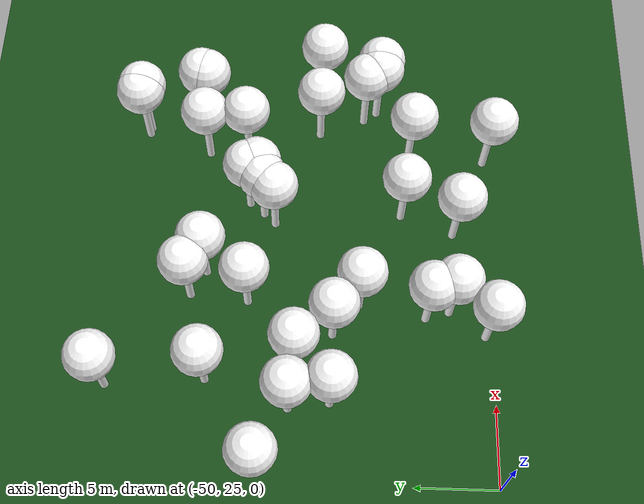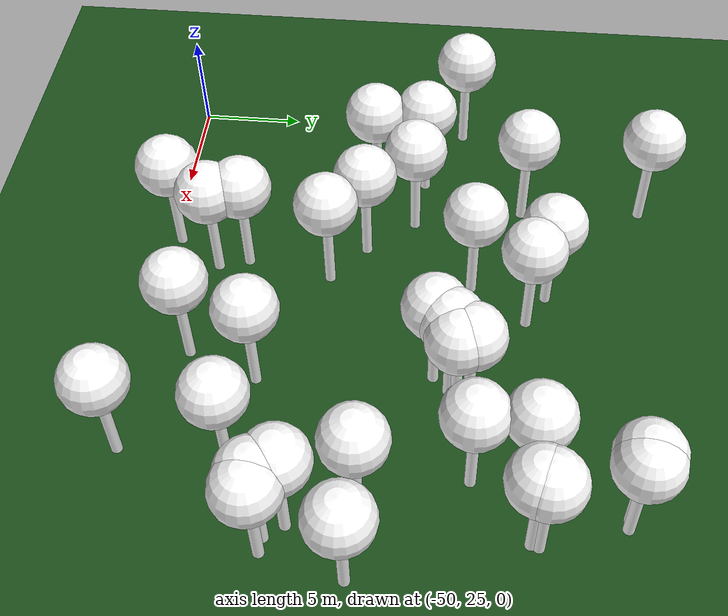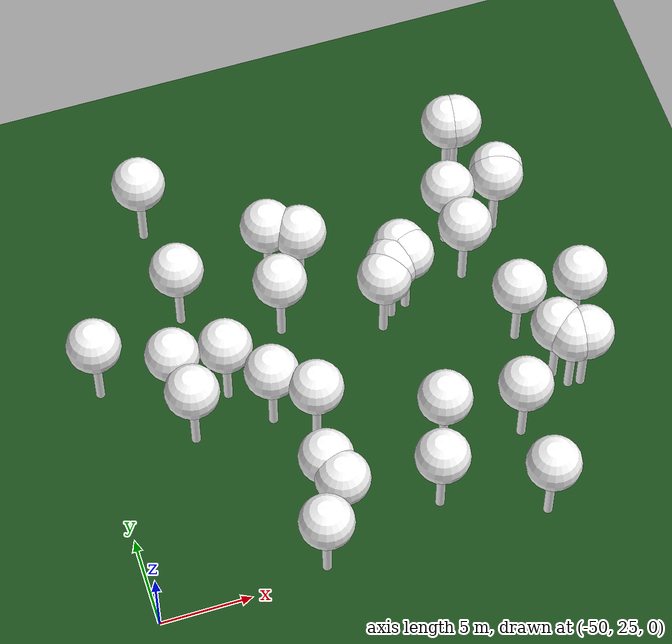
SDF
<sdf version="1.8">
 <world name="forest_world">
  <model name="tree_simple489">
   <static>1</static>
   <link name="link">
    <pose>0 0 0.1 0 -0 0</pose>
    <collision name="collision_trunk">
     <pose>0 0 2 0 -0 0</pose>
     <geometry><cylinder><radius>0.25</radius><length>4</length></cylinder></geometry>
    </collision>
    <collision name="collision_treetop">
     <pose>0 0 5.2 0 -0 0</pose>
     <geometry><sphere><radius>1.5</radius></sphere></geometry>
    </collision>
    <visual name="trunk">
     <pose>0 0 2 0 -0 0</pose>
     <geometry><cylinder><radius>0.25</radius><length>4</length></cylinder></geometry>
     <material>
      <ambient>0.5 0.5 0.5 1</ambient>
      <diffuse>1.0 1.0 1.0 1</diffuse>
      <specular>0.0 0.0 0.0 1</specular>
      <pbr>
       <metal>
        <albedo_map>../worlds/textures/tree_simple_trunk.jpg</albedo_map>
        <metalness>0.0</metalness>
        <roughness>0.8</roughness>
       </metal>
      </pbr>
     </material>
    </visual>
    <visual name="treetop">
     <pose>0 0 5.2 0 -0 0</pose>
     <geometry><sphere><radius>1.5</radius></sphere></geometry>
     <material>
      <ambient>0.5 0.5 0.5 1</ambient>
      <diffuse>1.0 1.0 1.0 1</diffuse>
      <specular>0.0 0.0 0.0 1</specular>
      <pbr>
       <metal>
        <albedo_map>../worlds/textures/tree_simple_treetop.jpg</albedo_map>
        <metalness>0.0</metalness>
        <roughness>0.9</roughness>
       </metal>
      </pbr>
     </material>
    </visual>
   </link>
   <pose>-32.6634579524 39.3278172931 0 0 -0 0</pose>
  </model>
  <model name="tree_simple482">
   <static>1</static>
   <link name="link">
    <pose>0 0 0.1 0 -0 0</pose>
    <collision name="collision_trunk">
     <pose>0 0 2 0 -0 0</pose>
     <geometry><cylinder><radius>0.25</radius><length>4</length></cylinder></geometry>
    </collision>
    <collision name="collision_treetop">
     <pose>0 0 5.2 0 -0 0</pose>
     <geometry><sphere><radius>1.5</radius></sphere></geometry>
    </collision>
    <visual name="trunk">
     <pose>0 0 2 0 -0 0</pose>
     <geometry><cylinder><radius>0.25</radius><length>4</length></cylinder></geometry>
     <material>
      <ambient>0.5 0.5 0.5 1</ambient>
      <diffuse>1.0 1.0 1.0 1</diffuse>
      <specular>0.0 0.0 0.0 1</specular>
      <pbr>
       <metal>
        <albedo_map>../worlds/textures/tree_simple_trunk.jpg</albedo_map>
        <metalness>0.0</metalness>
        <roughness>0.8</roughness>
       </metal>
      </pbr>
     </material>
    </visual>
    <visual name="treetop">
     <pose>0 0 5.2 0 -0 0</pose>
     <geometry><sphere><radius>1.5</radius></sphere></geometry>
     <material>
      <ambient>0.5 0.5 0.5 1</ambient>
      <diffuse>1.0 1.0 1.0 1</diffuse>
      <specular>0.0 0.0 0.0 1</specular>
      <pbr>
       <metal>
        <albedo_map>../worlds/textures/tree_simple_treetop.jpg</albedo_map>
        <metalness>0.0</metalness>
        <roughness>0.9</roughness>
       </metal>
      </pbr>
     </material>
    </visual>
   </link>
   <pose>-31.7137183406 39.6850484597 0 0 -0 0</pose>
  </model>
  <model name="tree_simple474">
   <static>1</static>
   <link name="link">
    <pose>0 0 0.1 0 -0 0</pose>
    <collision name="collision_trunk">
     <pose>0 0 2 0 -0 0</pose>
     <geometry><cylinder><radius>0.25</radius><length>4</length></cylinder></geometry>
    </collision>
    <collision name="collision_treetop">
     <pose>0 0 5.2 0 -0 0</pose>
     <geometry><sphere><radius>1.5</radius></sphere></geometry>
    </collision>
    <visual name="trunk">
     <pose>0 0 2 0 -0 0</pose>
     <geometry><cylinder><radius>0.25</radius><length>4</length></cylinder></geometry>
     <material>
      <ambient>0.5 0.5 0.5 1</ambient>
      <diffuse>1.0 1.0 1.0 1</diffuse>
      <specular>0.0 0.0 0.0 1</specular>
      <pbr>
       <metal>
        <albedo_map>../worlds/textures/tree_simple_trunk.jpg</albedo_map>
        <metalness>0.0</metalness>
        <roughness>0.8</roughness>
       </metal>
      </pbr>
     </material>
    </visual>
    <visual name="treetop">
     <pose>0 0 5.2 0 -0 0</pose>
     <geometry><sphere><radius>1.5</radius></sphere></geometry>
     <material>
      <ambient>0.5 0.5 0.5 1</ambient>
      <diffuse>1.0 1.0 1.0 1</diffuse>
      <specular>0.0 0.0 0.0 1</specular>
      <pbr>
       <metal>
        <albedo_map>../worlds/textures/tree_simple_treetop.jpg</albedo_map>
        <metalness>0.0</metalness>
        <roughness>0.9</roughness>
       </metal>
      </pbr>
     </material>
    </visual>
   </link>
   <pose>-45.5609359524 37.3889677829 0 0 -0 0</pose>
  </model>
  <model name="tree_simple462">
   <static>1</static>
   <link name="link">
    <pose>0 0 0.1 0 -0 0</pose>
    <collision name="collision_trunk">
     <pose>0 0 2 0 -0 0</pose>
     <geometry><cylinder><radius>0.25</radius><length>4</length></cylinder></geometry>
    </collision>
    <collision name="collision_treetop">
     <pose>0 0 5.2 0 -0 0</pose>
     <geometry><sphere><radius>1.5</radius></sphere></geometry>
    </collision>
    <visual name="trunk">
     <pose>0 0 2 0 -0 0</pose>
     <geometry><cylinder><radius>0.25</radius><length>4</length></cylinder></geometry>
     <material>
      <ambient>0.5 0.5 0.5 1</ambient>
      <diffuse>1.0 1.0 1.0 1</diffuse>
      <specular>0.0 0.0 0.0 1</specular>
      <pbr>
       <metal>
        <albedo_map>../worlds/textures/tree_simple_trunk.jpg</albedo_map>
        <metalness>0.0</metalness>
        <roughness>0.8</roughness>
       </metal>
      </pbr>
     </material>
    </visual>
    <visual name="treetop">
     <pose>0 0 5.2 0 -0 0</pose>
     <geometry><sphere><radius>1.5</radius></sphere></geometry>
     <material>
      <ambient>0.5 0.5 0.5 1</ambient>
      <diffuse>1.0 1.0 1.0 1</diffuse>
      <specular>0.0 0.0 0.0 1</specular>
      <pbr>
       <metal>
        <albedo_map>../worlds/textures/tree_simple_treetop.jpg</albedo_map>
        <metalness>0.0</metalness>
        <roughness>0.9</roughness>
       </metal>
      </pbr>
     </material>
    </visual>
   </link>
   <pose>-33.3479265171 38.6010387018 0 0 -0 0</pose>
  </model>
  <model name="tree_simple441">
   <static>1</static>
   <link name="link">
    <pose>0 0 0.1 0 -0 0</pose>
    <collision name="collision_trunk">
     <pose>0 0 2 0 -0 0</pose>
     <geometry><cylinder><radius>0.25</radius><length>4</length></cylinder></geometry>
    </collision>
    <collision name="collision_treetop">
     <pose>0 0 5.2 0 -0 0</pose>
     <geometry><sphere><radius>1.5</radius></sphere></geometry>
    </collision>
    <visual name="trunk">
     <pose>0 0 2 0 -0 0</pose>
     <geometry><cylinder><radius>0.25</radius><length>4</length></cylinder></geometry>
     <material>
      <ambient>0.5 0.5 0.5 1</ambient>
      <diffuse>1.0 1.0 1.0 1</diffuse>
      <specular>0.0 0.0 0.0 1</specular>
      <pbr>
       <metal>
        <albedo_map>../worlds/textures/tree_simple_trunk.jpg</albedo_map>
        <metalness>0.0</metalness>
        <roughness>0.8</roughness>
       </metal>
      </pbr>
     </material>
    </visual>
    <visual name="treetop">
     <pose>0 0 5.2 0 -0 0</pose>
     <geometry><sphere><radius>1.5</radius></sphere></geometry>
     <material>
      <ambient>0.5 0.5 0.5 1</ambient>
      <diffuse>1.0 1.0 1.0 1</diffuse>
      <specular>0.0 0.0 0.0 1</specular>
      <pbr>
       <metal>
        <albedo_map>../worlds/textures/tree_simple_treetop.jpg</albedo_map>
        <metalness>0.0</metalness>
        <roughness>0.9</roughness>
       </metal>
      </pbr>
     </material>
    </visual>
   </link>
   <pose>-25.4258718868 33.0017159702 0 0 -0 0</pose>
  </model>
  <model name="tree_simple410">
   <static>1</static>
   <link name="link">
    <pose>0 0 0.1 0 -0 0</pose>
    <collision name="collision_trunk">
     <pose>0 0 2 0 -0 0</pose>
     <geometry><cylinder><radius>0.25</radius><length>4</length></cylinder></geometry>
    </collision>
    <collision name="collision_treetop">
     <pose>0 0 5.2 0 -0 0</pose>
     <geometry><sphere><radius>1.5</radius></sphere></geometry>
    </collision>
    <visual name="trunk">
     <pose>0 0 2 0 -0 0</pose>
     <geometry><cylinder><radius>0.25</radius><length>4</length></cylinder></geometry>
     <material>
      <ambient>0.5 0.5 0.5 1</ambient>
      <diffuse>1.0 1.0 1.0 1</diffuse>
      <specular>0.0 0.0 0.0 1</specular>
      <pbr>
       <metal>
        <albedo_map>../worlds/textures/tree_simple_trunk.jpg</albedo_map>
        <metalness>0.0</metalness>
        <roughness>0.8</roughness>
       </metal>
      </pbr>
     </material>
    </visual>
    <visual name="treetop">
     <pose>0 0 5.2 0 -0 0</pose>
     <geometry><sphere><radius>1.5</radius></sphere></geometry>
     <material>
      <ambient>0.5 0.5 0.5 1</ambient>
      <diffuse>1.0 1.0 1.0 1</diffuse>
      <specular>0.0 0.0 0.0 1</specular>
      <pbr>
       <metal>
        <albedo_map>../worlds/textures/tree_simple_treetop.jpg</albedo_map>
        <metalness>0.0</metalness>
        <roughness>0.9</roughness>
       </metal>
      </pbr>
     </material>
    </visual>
   </link>
   <pose>-31.9347087499 40.2537422087 0 0 -0 0</pose>
  </model>
  <model name="tree_simple409">
   <static>1</static>
   <link name="link">
    <pose>0 0 0.1 0 -0 0</pose>
    <collision name="collision_trunk">
     <pose>0 0 2 0 -0 0</pose>
     <geometry><cylinder><radius>0.25</radius><length>4</length></cylinder></geometry>
    </collision>
    <collision name="collision_treetop">
     <pose>0 0 5.2 0 -0 0</pose>
     <geometry><sphere><radius>1.5</radius></sphere></geometry>
    </collision>
    <visual name="trunk">
     <pose>0 0 2 0 -0 0</pose>
     <geometry><cylinder><radius>0.25</radius><length>4</length></cylinder></geometry>
     <material>
      <ambient>0.5 0.5 0.5 1</ambient>
      <diffuse>1.0 1.0 1.0 1</diffuse>
      <specular>0.0 0.0 0.0 1</specular>
      <pbr>
       <metal>
        <albedo_map>../worlds/textures/tree_simple_trunk.jpg</albedo_map>
        <metalness>0.0</metalness>
        <roughness>0.8</roughness>
       </metal>
      </pbr>
     </material>
    </visual>
    <visual name="treetop">
     <pose>0 0 5.2 0 -0 0</pose>
     <geometry><sphere><radius>1.5</radius></sphere></geometry>
     <material>
      <ambient>0.5 0.5 0.5 1</ambient>
      <diffuse>1.0 1.0 1.0 1</diffuse>
      <specular>0.0 0.0 0.0 1</specular>
      <pbr>
       <metal>
        <albedo_map>../worlds/textures/tree_simple_treetop.jpg</albedo_map>
        <metalness>0.0</metalness>
        <roughness>0.9</roughness>
       </metal>
      </pbr>
     </material>
    </visual>
   </link>
   <pose>-23.2045481925 35.7189479207 0 0 -0 0</pose>
  </model>
  <model name="tree_simple358">
   <static>1</static>
   <link name="link">
    <pose>0 0 0.1 0 -0 0</pose>
    <collision name="collision_trunk">
     <pose>0 0 2 0 -0 0</pose>
     <geometry><cylinder><radius>0.25</radius><length>4</length></cylinder></geometry>
    </collision>
    <collision name="collision_treetop">
     <pose>0 0 5.2 0 -0 0</pose>
     <geometry><sphere><radius>1.5</radius></sphere></geometry>
    </collision>
    <visual name="trunk">
     <pose>0 0 2 0 -0 0</pose>
     <geometry><cylinder><radius>0.25</radius><length>4</length></cylinder></geometry>
     <material>
      <ambient>0.5 0.5 0.5 1</ambient>
      <diffuse>1.0 1.0 1.0 1</diffuse>
      <specular>0.0 0.0 0.0 1</specular>
      <pbr>
       <metal>
        <albedo_map>../worlds/textures/tree_simple_trunk.jpg</albedo_map>
        <metalness>0.0</metalness>
        <roughness>0.8</roughness>
       </metal>
      </pbr>
     </material>
    </visual>
    <visual name="treetop">
     <pose>0 0 5.2 0 -0 0</pose>
     <geometry><sphere><radius>1.5</radius></sphere></geometry>
     <material>
      <ambient>0.5 0.5 0.5 1</ambient>
      <diffuse>1.0 1.0 1.0 1</diffuse>
      <specular>0.0 0.0 0.0 1</specular>
      <pbr>
       <metal>
        <albedo_map>../worlds/textures/tree_simple_treetop.jpg</albedo_map>
        <metalness>0.0</metalness>
        <roughness>0.9</roughness>
       </metal>
      </pbr>
     </material>
    </visual>
   </link>
   <pose>-28.1059387966 40.529489556 0 0 -0 0</pose>
  </model>
  <model name="tree_simple351">
   <static>1</static>
   <link name="link">
    <pose>0 0 0.1 0 -0 0</pose>
    <collision name="collision_trunk">
     <pose>0 0 2 0 -0 0</pose>
     <geometry><cylinder><radius>0.25</radius><length>4</length></cylinder></geometry>
    </collision>
    <collision name="collision_treetop">
     <pose>0 0 5.2 0 -0 0</pose>
     <geometry><sphere><radius>1.5</radius></sphere></geometry>
    </collision>
    <visual name="trunk">
     <pose>0 0 2 0 -0 0</pose>
     <geometry><cylinder><radius>0.25</radius><length>4</length></cylinder></geometry>
     <material>
      <ambient>0.5 0.5 0.5 1</ambient>
      <diffuse>1.0 1.0 1.0 1</diffuse>
      <specular>0.0 0.0 0.0 1</specular>
      <pbr>
       <metal>
        <albedo_map>../worlds/textures/tree_simple_trunk.jpg</albedo_map>
        <metalness>0.0</metalness>
        <roughness>0.8</roughness>
       </metal>
      </pbr>
     </material>
    </visual>
    <visual name="treetop">
     <pose>0 0 5.2 0 -0 0</pose>
     <geometry><sphere><radius>1.5</radius></sphere></geometry>
     <material>
      <ambient>0.5 0.5 0.5 1</ambient>
      <diffuse>1.0 1.0 1.0 1</diffuse>
      <specular>0.0 0.0 0.0 1</specular>
      <pbr>
       <metal>
        <albedo_map>../worlds/textures/tree_simple_treetop.jpg</albedo_map>
        <metalness>0.0</metalness>
        <roughness>0.9</roughness>
       </metal>
      </pbr>
     </material>
    </visual>
   </link>
   <pose>-28.4628783032 25.1782097003 0 0 -0 0</pose>
  </model>
  <model name="tree_simple336">
   <static>1</static>
   <link name="link">
    <pose>0 0 0.1 0 -0 0</pose>
    <collision name="collision_trunk">
     <pose>0 0 2 0 -0 0</pose>
     <geometry><cylinder><radius>0.25</radius><length>4</length></cylinder></geometry>
    </collision>
    <collision name="collision_treetop">
     <pose>0 0 5.2 0 -0 0</pose>
     <geometry><sphere><radius>1.5</radius></sphere></geometry>
    </collision>
    <visual name="trunk">
     <pose>0 0 2 0 -0 0</pose>
     <geometry><cylinder><radius>0.25</radius><length>4</length></cylinder></geometry>
     <material>
      <ambient>0.5 0.5 0.5 1</ambient>
      <diffuse>1.0 1.0 1.0 1</diffuse>
      <specular>0.0 0.0 0.0 1</specular>
      <pbr>
       <metal>
        <albedo_map>../worlds/textures/tree_simple_trunk.jpg</albedo_map>
        <metalness>0.0</metalness>
        <roughness>0.8</roughness>
       </metal>
      </pbr>
     </material>
    </visual>
    <visual name="treetop">
     <pose>0 0 5.2 0 -0 0</pose>
     <geometry><sphere><radius>1.5</radius></sphere></geometry>
     <material>
      <ambient>0.5 0.5 0.5 1</ambient>
      <diffuse>1.0 1.0 1.0 1</diffuse>
      <specular>0.0 0.0 0.0 1</specular>
      <pbr>
       <metal>
        <albedo_map>../worlds/textures/tree_simple_treetop.jpg</albedo_map>
        <metalness>0.0</metalness>
        <roughness>0.9</roughness>
       </metal>
      </pbr>
     </material>
    </visual>
   </link>
   <pose>-43.9020074738 42.4187815875 0 0 -0 0</pose>
  </model>
  <model name="tree_simple331">
   <static>1</static>
   <link name="link">
    <pose>0 0 0.1 0 -0 0</pose>
    <collision name="collision_trunk">
     <pose>0 0 2 0 -0 0</pose>
     <geometry><cylinder><radius>0.25</radius><length>4</length></cylinder></geometry>
    </collision>
    <collision name="collision_treetop">
     <pose>0 0 5.2 0 -0 0</pose>
     <geometry><sphere><radius>1.5</radius></sphere></geometry>
    </collision>
    <visual name="trunk">
     <pose>0 0 2 0 -0 0</pose>
     <geometry><cylinder><radius>0.25</radius><length>4</length></cylinder></geometry>
     <material>
      <ambient>0.5 0.5 0.5 1</ambient>
      <diffuse>1.0 1.0 1.0 1</diffuse>
      <specular>0.0 0.0 0.0 1</specular>
      <pbr>
       <metal>
        <albedo_map>../worlds/textures/tree_simple_trunk.jpg</albedo_map>
        <metalness>0.0</metalness>
        <roughness>0.8</roughness>
       </metal>
      </pbr>
     </material>
    </visual>
    <visual name="treetop">
     <pose>0 0 5.2 0 -0 0</pose>
     <geometry><sphere><radius>1.5</radius></sphere></geometry>
     <material>
      <ambient>0.5 0.5 0.5 1</ambient>
      <diffuse>1.0 1.0 1.0 1</diffuse>
      <specular>0.0 0.0 0.0 1</specular>
      <pbr>
       <metal>
        <albedo_map>../worlds/textures/tree_simple_treetop.jpg</albedo_map>
        <metalness>0.0</metalness>
        <roughness>0.9</roughness>
       </metal>
      </pbr>
     </material>
    </visual>
   </link>
   <pose>-40.8341940448 34.8238319948 0 0 -0 0</pose>
  </model>
  <model name="tree_simple319">
   <static>1</static>
   <link name="link">
    <pose>0 0 0.1 0 -0 0</pose>
    <collision name="collision_trunk">
     <pose>0 0 2 0 -0 0</pose>
     <geometry><cylinder><radius>0.25</radius><length>4</length></cylinder></geometry>
    </collision>
    <collision name="collision_treetop">
     <pose>0 0 5.2 0 -0 0</pose>
     <geometry><sphere><radius>1.5</radius></sphere></geometry>
    </collision>
    <visual name="trunk">
     <pose>0 0 2 0 -0 0</pose>
     <geometry><cylinder><radius>0.25</radius><length>4</length></cylinder></geometry>
     <material>
      <ambient>0.5 0.5 0.5 1</ambient>
      <diffuse>1.0 1.0 1.0 1</diffuse>
      <specular>0.0 0.0 0.0 1</specular>
      <pbr>
       <metal>
        <albedo_map>../worlds/textures/tree_simple_trunk.jpg</albedo_map>
        <metalness>0.0</metalness>
        <roughness>0.8</roughness>
       </metal>
      </pbr>
     </material>
    </visual>
    <visual name="treetop">
     <pose>0 0 5.2 0 -0 0</pose>
     <geometry><sphere><radius>1.5</radius></sphere></geometry>
     <material>
      <ambient>0.5 0.5 0.5 1</ambient>
      <diffuse>1.0 1.0 1.0 1</diffuse>
      <specular>0.0 0.0 0.0 1</specular>
      <pbr>
       <metal>
        <albedo_map>../worlds/textures/tree_simple_treetop.jpg</albedo_map>
        <metalness>0.0</metalness>
        <roughness>0.9</roughness>
       </metal>
      </pbr>
     </material>
    </visual>
   </link>
   <pose>-33.8227496689 27.309967617 0 0 -0 0</pose>
  </model>
  <model name="tree_simple311">
   <static>1</static>
   <link name="link">
    <pose>0 0 0.1 0 -0 0</pose>
    <collision name="collision_trunk">
     <pose>0 0 2 0 -0 0</pose>
     <geometry><cylinder><radius>0.25</radius><length>4</length></cylinder></geometry>
    </collision>
    <collision name="collision_treetop">
     <pose>0 0 5.2 0 -0 0</pose>
     <geometry><sphere><radius>1.5</radius></sphere></geometry>
    </collision>
    <visual name="trunk">
     <pose>0 0 2 0 -0 0</pose>
     <geometry><cylinder><radius>0.25</radius><length>4</length></cylinder></geometry>
     <material>
      <ambient>0.5 0.5 0.5 1</ambient>
      <diffuse>1.0 1.0 1.0 1</diffuse>
      <specular>0.0 0.0 0.0 1</specular>
      <pbr>
       <metal>
        <albedo_map>../worlds/textures/tree_simple_trunk.jpg</albedo_map>
        <metalness>0.0</metalness>
        <roughness>0.8</roughness>
       </metal>
      </pbr>
     </material>
    </visual>
    <visual name="treetop">
     <pose>0 0 5.2 0 -0 0</pose>
     <geometry><sphere><radius>1.5</radius></sphere></geometry>
     <material>
      <ambient>0.5 0.5 0.5 1</ambient>
      <diffuse>1.0 1.0 1.0 1</diffuse>
      <specular>0.0 0.0 0.0 1</specular>
      <pbr>
       <metal>
        <albedo_map>../worlds/textures/tree_simple_treetop.jpg</albedo_map>
        <metalness>0.0</metalness>
        <roughness>0.9</roughness>
       </metal>
      </pbr>
     </material>
    </visual>
   </link>
   <pose>-49.3857645653 39.1709388153 0 0 -0 0</pose>
  </model>
  <model name="tree_simple310">
   <static>1</static>
   <link name="link">
    <pose>0 0 0.1 0 -0 0</pose>
    <collision name="collision_trunk">
     <pose>0 0 2 0 -0 0</pose>
     <geometry><cylinder><radius>0.25</radius><length>4</length></cylinder></geometry>
    </collision>
    <collision name="collision_treetop">
     <pose>0 0 5.2 0 -0 0</pose>
     <geometry><sphere><radius>1.5</radius></sphere></geometry>
    </collision>
    <visual name="trunk">
     <pose>0 0 2 0 -0 0</pose>
     <geometry><cylinder><radius>0.25</radius><length>4</length></cylinder></geometry>
     <material>
      <ambient>0.5 0.5 0.5 1</ambient>
      <diffuse>1.0 1.0 1.0 1</diffuse>
      <specular>0.0 0.0 0.0 1</specular>
      <pbr>
       <metal>
        <albedo_map>../worlds/textures/tree_simple_trunk.jpg</albedo_map>
        <metalness>0.0</metalness>
        <roughness>0.8</roughness>
       </metal>
      </pbr>
     </material>
    </visual>
    <visual name="treetop">
     <pose>0 0 5.2 0 -0 0</pose>
     <geometry><sphere><radius>1.5</radius></sphere></geometry>
     <material>
      <ambient>0.5 0.5 0.5 1</ambient>
      <diffuse>1.0 1.0 1.0 1</diffuse>
      <specular>0.0 0.0 0.0 1</specular>
      <pbr>
       <metal>
        <albedo_map>../worlds/textures/tree_simple_treetop.jpg</albedo_map>
        <metalness>0.0</metalness>
        <roughness>0.9</roughness>
       </metal>
      </pbr>
     </material>
    </visual>
   </link>
   <pose>-24.1249967054 32.1060106323 0 0 -0 0</pose>
  </model>
  <model name="tree_simple307">
   <static>1</static>
   <link name="link">
    <pose>0 0 0.1 0 -0 0</pose>
    <collision name="collision_trunk">
     <pose>0 0 2 0 -0 0</pose>
     <geometry><cylinder><radius>0.25</radius><length>4</length></cylinder></geometry>
    </collision>
    <collision name="collision_treetop">
     <pose>0 0 5.2 0 -0 0</pose>
     <geometry><sphere><radius>1.5</radius></sphere></geometry>
    </collision>
    <visual name="trunk">
     <pose>0 0 2 0 -0 0</pose>
     <geometry><cylinder><radius>0.25</radius><length>4</length></cylinder></geometry>
     <material>
      <ambient>0.5 0.5 0.5 1</ambient>
      <diffuse>1.0 1.0 1.0 1</diffuse>
      <specular>0.0 0.0 0.0 1</specular>
      <pbr>
       <metal>
        <albedo_map>../worlds/textures/tree_simple_trunk.jpg</albedo_map>
        <metalness>0.0</metalness>
        <roughness>0.8</roughness>
       </metal>
      </pbr>
     </material>
    </visual>
    <visual name="treetop">
     <pose>0 0 5.2 0 -0 0</pose>
     <geometry><sphere><radius>1.5</radius></sphere></geometry>
     <material>
      <ambient>0.5 0.5 0.5 1</ambient>
      <diffuse>1.0 1.0 1.0 1</diffuse>
      <specular>0.0 0.0 0.0 1</specular>
      <pbr>
       <metal>
        <albedo_map>../worlds/textures/tree_simple_treetop.jpg</albedo_map>
        <metalness>0.0</metalness>
        <roughness>0.9</roughness>
       </metal>
      </pbr>
     </material>
    </visual>
   </link>
   <pose>-25.3992623196 43.1282745175 0 0 -0 0</pose>
  </model>
  <model name="tree_simple291">
   <static>1</static>
   <link name="link">
    <pose>0 0 0.1 0 -0 0</pose>
    <collision name="collision_trunk">
     <pose>0 0 2 0 -0 0</pose>
     <geometry><cylinder><radius>0.25</radius><length>4</length></cylinder></geometry>
    </collision>
    <collision name="collision_treetop">
     <pose>0 0 5.2 0 -0 0</pose>
     <geometry><sphere><radius>1.5</radius></sphere></geometry>
    </collision>
    <visual name="trunk">
     <pose>0 0 2 0 -0 0</pose>
     <geometry><cylinder><radius>0.25</radius><length>4</length></cylinder></geometry>
     <material>
      <ambient>0.5 0.5 0.5 1</ambient>
      <diffuse>1.0 1.0 1.0 1</diffuse>
      <specular>0.0 0.0 0.0 1</specular>
      <pbr>
       <metal>
        <albedo_map>../worlds/textures/tree_simple_trunk.jpg</albedo_map>
        <metalness>0.0</metalness>
        <roughness>0.8</roughness>
       </metal>
      </pbr>
     </material>
    </visual>
    <visual name="treetop">
     <pose>0 0 5.2 0 -0 0</pose>
     <geometry><sphere><radius>1.5</radius></sphere></geometry>
     <material>
      <ambient>0.5 0.5 0.5 1</ambient>
      <diffuse>1.0 1.0 1.0 1</diffuse>
      <specular>0.0 0.0 0.0 1</specular>
      <pbr>
       <metal>
        <albedo_map>../worlds/textures/tree_simple_treetop.jpg</albedo_map>
        <metalness>0.0</metalness>
        <roughness>0.9</roughness>
       </metal>
      </pbr>
     </material>
    </visual>
   </link>
   <pose>-38.780558868 40.0860126223 0 0 -0 0</pose>
  </model>
  <model name="tree_simple264">
   <static>1</static>
   <link name="link">
    <pose>0 0 0.1 0 -0 0</pose>
    <collision name="collision_trunk">
     <pose>0 0 2 0 -0 0</pose>
     <geometry><cylinder><radius>0.25</radius><length>4</length></cylinder></geometry>
    </collision>
    <collision name="collision_treetop">
     <pose>0 0 5.2 0 -0 0</pose>
     <geometry><sphere><radius>1.5</radius></sphere></geometry>
    </collision>
    <visual name="trunk">
     <pose>0 0 2 0 -0 0</pose>
     <geometry><cylinder><radius>0.25</radius><length>4</length></cylinder></geometry>
     <material>
      <ambient>0.5 0.5 0.5 1</ambient>
      <diffuse>1.0 1.0 1.0 1</diffuse>
      <specular>0.0 0.0 0.0 1</specular>
      <pbr>
       <metal>
        <albedo_map>../worlds/textures/tree_simple_trunk.jpg</albedo_map>
        <metalness>0.0</metalness>
        <roughness>0.8</roughness>
       </metal>
      </pbr>
     </material>
    </visual>
    <visual name="treetop">
     <pose>0 0 5.2 0 -0 0</pose>
     <geometry><sphere><radius>1.5</radius></sphere></geometry>
     <material>
      <ambient>0.5 0.5 0.5 1</ambient>
      <diffuse>1.0 1.0 1.0 1</diffuse>
      <specular>0.0 0.0 0.0 1</specular>
      <pbr>
       <metal>
        <albedo_map>../worlds/textures/tree_simple_treetop.jpg</albedo_map>
        <metalness>0.0</metalness>
        <roughness>0.9</roughness>
       </metal>
      </pbr>
     </material>
    </visual>
   </link>
   <pose>-26.5960769864 35.8751081016 0 0 -0 0</pose>
  </model>
  <model name="tree_simple256">
   <static>1</static>
   <link name="link">
    <pose>0 0 0.1 0 -0 0</pose>
    <collision name="collision_trunk">
     <pose>0 0 2 0 -0 0</pose>
     <geometry><cylinder><radius>0.25</radius><length>4</length></cylinder></geometry>
    </collision>
    <collision name="collision_treetop">
     <pose>0 0 5.2 0 -0 0</pose>
     <geometry><sphere><radius>1.5</radius></sphere></geometry>
    </collision>
    <visual name="trunk">
     <pose>0 0 2 0 -0 0</pose>
     <geometry><cylinder><radius>0.25</radius><length>4</length></cylinder></geometry>
     <material>
      <ambient>0.5 0.5 0.5 1</ambient>
      <diffuse>1.0 1.0 1.0 1</diffuse>
      <specular>0.0 0.0 0.0 1</specular>
      <pbr>
       <metal>
        <albedo_map>../worlds/textures/tree_simple_trunk.jpg</albedo_map>
        <metalness>0.0</metalness>
        <roughness>0.8</roughness>
       </metal>
      </pbr>
     </material>
    </visual>
    <visual name="treetop">
     <pose>0 0 5.2 0 -0 0</pose>
     <geometry><sphere><radius>1.5</radius></sphere></geometry>
     <material>
      <ambient>0.5 0.5 0.5 1</ambient>
      <diffuse>1.0 1.0 1.0 1</diffuse>
      <specular>0.0 0.0 0.0 1</specular>
      <pbr>
       <metal>
        <albedo_map>../worlds/textures/tree_simple_treetop.jpg</albedo_map>
        <metalness>0.0</metalness>
        <roughness>0.9</roughness>
       </metal>
      </pbr>
     </material>
    </visual>
   </link>
   <pose>-38.4325558623 43.6568851864 0 0 -0 0</pose>
  </model>
  <model name="tree_simple247">
   <static>1</static>
   <link name="link">
    <pose>0 0 0.1 0 -0 0</pose>
    <collision name="collision_trunk">
     <pose>0 0 2 0 -0 0</pose>
     <geometry><cylinder><radius>0.25</radius><length>4</length></cylinder></geometry>
    </collision>
    <collision name="collision_treetop">
     <pose>0 0 5.2 0 -0 0</pose>
     <geometry><sphere><radius>1.5</radius></sphere></geometry>
    </collision>
    <visual name="trunk">
     <pose>0 0 2 0 -0 0</pose>
     <geometry><cylinder><radius>0.25</radius><length>4</length></cylinder></geometry>
     <material>
      <ambient>0.5 0.5 0.5 1</ambient>
      <diffuse>1.0 1.0 1.0 1</diffuse>
      <specular>0.0 0.0 0.0 1</specular>
      <pbr>
       <metal>
        <albedo_map>../worlds/textures/tree_simple_trunk.jpg</albedo_map>
        <metalness>0.0</metalness>
        <roughness>0.8</roughness>
       </metal>
      </pbr>
     </material>
    </visual>
    <visual name="treetop">
     <pose>0 0 5.2 0 -0 0</pose>
     <geometry><sphere><radius>1.5</radius></sphere></geometry>
     <material>
      <ambient>0.5 0.5 0.5 1</ambient>
      <diffuse>1.0 1.0 1.0 1</diffuse>
      <specular>0.0 0.0 0.0 1</specular>
      <pbr>
       <metal>
        <albedo_map>../worlds/textures/tree_simple_treetop.jpg</albedo_map>
        <metalness>0.0</metalness>
        <roughness>0.9</roughness>
       </metal>
      </pbr>
     </material>
    </visual>
   </link>
   <pose>-44.3832388131 48.3955182604 0 0 -0 0</pose>
  </model>
  <model name="tree_simple236">
   <static>1</static>
   <link name="link">
    <pose>0 0 0.1 0 -0 0</pose>
    <collision name="collision_trunk">
     <pose>0 0 2 0 -0 0</pose>
     <geometry><cylinder><radius>0.25</radius><length>4</length></cylinder></geometry>
    </collision>
    <collision name="collision_treetop">
     <pose>0 0 5.2 0 -0 0</pose>
     <geometry><sphere><radius>1.5</radius></sphere></geometry>
    </collision>
    <visual name="trunk">
     <pose>0 0 2 0 -0 0</pose>
     <geometry><cylinder><radius>0.25</radius><length>4</length></cylinder></geometry>
     <material>
      <ambient>0.5 0.5 0.5 1</ambient>
      <diffuse>1.0 1.0 1.0 1</diffuse>
      <specular>0.0 0.0 0.0 1</specular>
      <pbr>
       <metal>
        <albedo_map>../worlds/textures/tree_simple_trunk.jpg</albedo_map>
        <metalness>0.0</metalness>
        <roughness>0.8</roughness>
       </metal>
      </pbr>
     </material>
    </visual>
    <visual name="treetop">
     <pose>0 0 5.2 0 -0 0</pose>
     <geometry><sphere><radius>1.5</radius></sphere></geometry>
     <material>
      <ambient>0.5 0.5 0.5 1</ambient>
      <diffuse>1.0 1.0 1.0 1</diffuse>
      <specular>0.0 0.0 0.0 1</specular>
      <pbr>
       <metal>
        <albedo_map>../worlds/textures/tree_simple_treetop.jpg</albedo_map>
        <metalness>0.0</metalness>
        <roughness>0.9</roughness>
       </metal>
      </pbr>
     </material>
    </visual>
   </link>
   <pose>-28.2556560036 43.088579588 0 0 -0 0</pose>
  </model>
  <model name="tree_simple224">
   <static>1</static>
   <link name="link">
    <pose>0 0 0.1 0 -0 0</pose>
    <collision name="collision_trunk">
     <pose>0 0 2 0 -0 0</pose>
     <geometry><cylinder><radius>0.25</radius><length>4</length></cylinder></geometry>
    </collision>
    <collision name="collision_treetop">
     <pose>0 0 5.2 0 -0 0</pose>
     <geometry><sphere><radius>1.5</radius></sphere></geometry>
    </collision>
    <visual name="trunk">
     <pose>0 0 2 0 -0 0</pose>
     <geometry><cylinder><radius>0.25</radius><length>4</length></cylinder></geometry>
     <material>
      <ambient>0.5 0.5 0.5 1</ambient>
      <diffuse>1.0 1.0 1.0 1</diffuse>
      <specular>0.0 0.0 0.0 1</specular>
      <pbr>
       <metal>
        <albedo_map>../worlds/textures/tree_simple_trunk.jpg</albedo_map>
        <metalness>0.0</metalness>
        <roughness>0.8</roughness>
       </metal>
      </pbr>
     </material>
    </visual>
    <visual name="treetop">
     <pose>0 0 5.2 0 -0 0</pose>
     <geometry><sphere><radius>1.5</radius></sphere></geometry>
     <material>
      <ambient>0.5 0.5 0.5 1</ambient>
      <diffuse>1.0 1.0 1.0 1</diffuse>
      <specular>0.0 0.0 0.0 1</specular>
      <pbr>
       <metal>
        <albedo_map>../worlds/textures/tree_simple_treetop.jpg</albedo_map>
        <metalness>0.0</metalness>
        <roughness>0.9</roughness>
       </metal>
      </pbr>
     </material>
    </visual>
   </link>
   <pose>-25.303745436 43.465040084 0 0 -0 0</pose>
  </model>
  <model name="tree_simple208">
   <static>1</static>
   <link name="link">
    <pose>0 0 0.1 0 -0 0</pose>
    <collision name="collision_trunk">
     <pose>0 0 2 0 -0 0</pose>
     <geometry><cylinder><radius>0.25</radius><length>4</length></cylinder></geometry>
    </collision>
    <collision name="collision_treetop">
     <pose>0 0 5.2 0 -0 0</pose>
     <geometry><sphere><radius>1.5</radius></sphere></geometry>
    </collision>
    <visual name="trunk">
     <pose>0 0 2 0 -0 0</pose>
     <geometry><cylinder><radius>0.25</radius><length>4</length></cylinder></geometry>
     <material>
      <ambient>0.5 0.5 0.5 1</ambient>
      <diffuse>1.0 1.0 1.0 1</diffuse>
      <specular>0.0 0.0 0.0 1</specular>
      <pbr>
       <metal>
        <albedo_map>../worlds/textures/tree_simple_trunk.jpg</albedo_map>
        <metalness>0.0</metalness>
        <roughness>0.8</roughness>
       </metal>
      </pbr>
     </material>
    </visual>
    <visual name="treetop">
     <pose>0 0 5.2 0 -0 0</pose>
     <geometry><sphere><radius>1.5</radius></sphere></geometry>
     <material>
      <ambient>0.5 0.5 0.5 1</ambient>
      <diffuse>1.0 1.0 1.0 1</diffuse>
      <specular>0.0 0.0 0.0 1</specular>
      <pbr>
       <metal>
        <albedo_map>../worlds/textures/tree_simple_treetop.jpg</albedo_map>
        <metalness>0.0</metalness>
        <roughness>0.9</roughness>
       </metal>
      </pbr>
     </material>
    </visual>
   </link>
   <pose>-39.1560557195 27.6775865092 0 0 -0 0</pose>
  </model>
  <model name="tree_simple205">
   <static>1</static>
   <link name="link">
    <pose>0 0 0.1 0 -0 0</pose>
    <collision name="collision_trunk">
     <pose>0 0 2 0 -0 0</pose>
     <geometry><cylinder><radius>0.25</radius><length>4</length></cylinder></geometry>
    </collision>
    <collision name="collision_treetop">
     <pose>0 0 5.2 0 -0 0</pose>
     <geometry><sphere><radius>1.5</radius></sphere></geometry>
    </collision>
    <visual name="trunk">
     <pose>0 0 2 0 -0 0</pose>
     <geometry><cylinder><radius>0.25</radius><length>4</length></cylinder></geometry>
     <material>
      <ambient>0.5 0.5 0.5 1</ambient>
      <diffuse>1.0 1.0 1.0 1</diffuse>
      <specular>0.0 0.0 0.0 1</specular>
      <pbr>
       <metal>
        <albedo_map>../worlds/textures/tree_simple_trunk.jpg</albedo_map>
        <metalness>0.0</metalness>
        <roughness>0.8</roughness>
       </metal>
      </pbr>
     </material>
    </visual>
    <visual name="treetop">
     <pose>0 0 5.2 0 -0 0</pose>
     <geometry><sphere><radius>1.5</radius></sphere></geometry>
     <material>
      <ambient>0.5 0.5 0.5 1</ambient>
      <diffuse>1.0 1.0 1.0 1</diffuse>
      <specular>0.0 0.0 0.0 1</specular>
      <pbr>
       <metal>
        <albedo_map>../worlds/textures/tree_simple_treetop.jpg</albedo_map>
        <metalness>0.0</metalness>
        <roughness>0.9</roughness>
       </metal>
      </pbr>
     </material>
    </visual>
   </link>
   <pose>-28.261168219 30.0880019851 0 0 -0 0</pose>
  </model>
  <model name="tree_simple183">
   <static>1</static>
   <link name="link">
    <pose>0 0 0.1 0 -0 0</pose>
    <collision name="collision_trunk">
     <pose>0 0 2 0 -0 0</pose>
     <geometry><cylinder><radius>0.25</radius><length>4</length></cylinder></geometry>
    </collision>
    <collision name="collision_treetop">
     <pose>0 0 5.2 0 -0 0</pose>
     <geometry><sphere><radius>1.5</radius></sphere></geometry>
    </collision>
    <visual name="trunk">
     <pose>0 0 2 0 -0 0</pose>
     <geometry><cylinder><radius>0.25</radius><length>4</length></cylinder></geometry>
     <material>
      <ambient>0.5 0.5 0.5 1</ambient>
      <diffuse>1.0 1.0 1.0 1</diffuse>
      <specular>0.0 0.0 0.0 1</specular>
      <pbr>
       <metal>
        <albedo_map>../worlds/textures/tree_simple_trunk.jpg</albedo_map>
        <metalness>0.0</metalness>
        <roughness>0.8</roughness>
       </metal>
      </pbr>
     </material>
    </visual>
    <visual name="treetop">
     <pose>0 0 5.2 0 -0 0</pose>
     <geometry><sphere><radius>1.5</radius></sphere></geometry>
     <material>
      <ambient>0.5 0.5 0.5 1</ambient>
      <diffuse>1.0 1.0 1.0 1</diffuse>
      <specular>0.0 0.0 0.0 1</specular>
      <pbr>
       <metal>
        <albedo_map>../worlds/textures/tree_simple_treetop.jpg</albedo_map>
        <metalness>0.0</metalness>
        <roughness>0.9</roughness>
       </metal>
      </pbr>
     </material>
    </visual>
   </link>
   <pose>-24.8051767245 32.1734283562 0 0 -0 0</pose>
  </model>
  <model name="tree_simple132">
   <static>1</static>
   <link name="link">
    <pose>0 0 0.1 0 -0 0</pose>
    <collision name="collision_trunk">
     <pose>0 0 2 0 -0 0</pose>
     <geometry><cylinder><radius>0.25</radius><length>4</length></cylinder></geometry>
    </collision>
    <collision name="collision_treetop">
     <pose>0 0 5.2 0 -0 0</pose>
     <geometry><sphere><radius>1.5</radius></sphere></geometry>
    </collision>
    <visual name="trunk">
     <pose>0 0 2 0 -0 0</pose>
     <geometry><cylinder><radius>0.25</radius><length>4</length></cylinder></geometry>
     <material>
      <ambient>0.5 0.5 0.5 1</ambient>
      <diffuse>1.0 1.0 1.0 1</diffuse>
      <specular>0.0 0.0 0.0 1</specular>
      <pbr>
       <metal>
        <albedo_map>../worlds/textures/tree_simple_trunk.jpg</albedo_map>
        <metalness>0.0</metalness>
        <roughness>0.8</roughness>
       </metal>
      </pbr>
     </material>
    </visual>
    <visual name="treetop">
     <pose>0 0 5.2 0 -0 0</pose>
     <geometry><sphere><radius>1.5</radius></sphere></geometry>
     <material>
      <ambient>0.5 0.5 0.5 1</ambient>
      <diffuse>1.0 1.0 1.0 1</diffuse>
      <specular>0.0 0.0 0.0 1</specular>
      <pbr>
       <metal>
        <albedo_map>../worlds/textures/tree_simple_treetop.jpg</albedo_map>
        <metalness>0.0</metalness>
        <roughness>0.9</roughness>
       </metal>
      </pbr>
     </material>
    </visual>
   </link>
   <pose>-26.8565746681 47.2141464963 0 0 -0 0</pose>
  </model>
  <model name="tree_simple112">
   <static>1</static>
   <link name="link">
    <pose>0 0 0.1 0 -0 0</pose>
    <collision name="collision_trunk">
     <pose>0 0 2 0 -0 0</pose>
     <geometry><cylinder><radius>0.25</radius><length>4</length></cylinder></geometry>
    </collision>
    <collision name="collision_treetop">
     <pose>0 0 5.2 0 -0 0</pose>
     <geometry><sphere><radius>1.5</radius></sphere></geometry>
    </collision>
    <visual name="trunk">
     <pose>0 0 2 0 -0 0</pose>
     <geometry><cylinder><radius>0.25</radius><length>4</length></cylinder></geometry>
     <material>
      <ambient>0.5 0.5 0.5 1</ambient>
      <diffuse>1.0 1.0 1.0 1</diffuse>
      <specular>0.0 0.0 0.0 1</specular>
      <pbr>
       <metal>
        <albedo_map>../worlds/textures/tree_simple_trunk.jpg</albedo_map>
        <metalness>0.0</metalness>
        <roughness>0.8</roughness>
       </metal>
      </pbr>
     </material>
    </visual>
    <visual name="treetop">
     <pose>0 0 5.2 0 -0 0</pose>
     <geometry><sphere><radius>1.5</radius></sphere></geometry>
     <material>
      <ambient>0.5 0.5 0.5 1</ambient>
      <diffuse>1.0 1.0 1.0 1</diffuse>
      <specular>0.0 0.0 0.0 1</specular>
      <pbr>
       <metal>
        <albedo_map>../worlds/textures/tree_simple_treetop.jpg</albedo_map>
        <metalness>0.0</metalness>
        <roughness>0.9</roughness>
       </metal>
      </pbr>
     </material>
    </visual>
   </link>
   <pose>-36.862810057 42.7576459823 0 0 -0 0</pose>
  </model>
  <model name="tree_simple111">
   <static>1</static>
   <link name="link">
    <pose>0 0 0.1 0 -0 0</pose>
    <collision name="collision_trunk">
     <pose>0 0 2 0 -0 0</pose>
     <geometry><cylinder><radius>0.25</radius><length>4</length></cylinder></geometry>
    </collision>
    <collision name="collision_treetop">
     <pose>0 0 5.2 0 -0 0</pose>
     <geometry><sphere><radius>1.5</radius></sphere></geometry>
    </collision>
    <visual name="trunk">
     <pose>0 0 2 0 -0 0</pose>
     <geometry><cylinder><radius>0.25</radius><length>4</length></cylinder></geometry>
     <material>
      <ambient>0.5 0.5 0.5 1</ambient>
      <diffuse>1.0 1.0 1.0 1</diffuse>
      <specular>0.0 0.0 0.0 1</specular>
      <pbr>
       <metal>
        <albedo_map>../worlds/textures/tree_simple_trunk.jpg</albedo_map>
        <metalness>0.0</metalness>
        <roughness>0.8</roughness>
       </metal>
      </pbr>
     </material>
    </visual>
    <visual name="treetop">
     <pose>0 0 5.2 0 -0 0</pose>
     <geometry><sphere><radius>1.5</radius></sphere></geometry>
     <material>
      <ambient>0.5 0.5 0.5 1</ambient>
      <diffuse>1.0 1.0 1.0 1</diffuse>
      <specular>0.0 0.0 0.0 1</specular>
      <pbr>
       <metal>
        <albedo_map>../worlds/textures/tree_simple_treetop.jpg</albedo_map>
        <metalness>0.0</metalness>
        <roughness>0.9</roughness>
       </metal>
      </pbr>
     </material>
    </visual>
   </link>
   <pose>-26.4353630298 47.1515170398 0 0 -0 0</pose>
  </model>
  <model name="tree_simple109">
   <static>1</static>
   <link name="link">
    <pose>0 0 0.1 0 -0 0</pose>
    <collision name="collision_trunk">
     <pose>0 0 2 0 -0 0</pose>
     <geometry><cylinder><radius>0.25</radius><length>4</length></cylinder></geometry>
    </collision>
    <collision name="collision_treetop">
     <pose>0 0 5.2 0 -0 0</pose>
     <geometry><sphere><radius>1.5</radius></sphere></geometry>
    </collision>
    <visual name="trunk">
     <pose>0 0 2 0 -0 0</pose>
     <geometry><cylinder><radius>0.25</radius><length>4</length></cylinder></geometry>
     <material>
      <ambient>0.5 0.5 0.5 1</ambient>
      <diffuse>1.0 1.0 1.0 1</diffuse>
      <specular>0.0 0.0 0.0 1</specular>
      <pbr>
       <metal>
        <albedo_map>../worlds/textures/tree_simple_trunk.jpg</albedo_map>
        <metalness>0.0</metalness>
        <roughness>0.8</roughness>
       </metal>
      </pbr>
     </material>
    </visual>
    <visual name="treetop">
     <pose>0 0 5.2 0 -0 0</pose>
     <geometry><sphere><radius>1.5</radius></sphere></geometry>
     <material>
      <ambient>0.5 0.5 0.5 1</ambient>
      <diffuse>1.0 1.0 1.0 1</diffuse>
      <specular>0.0 0.0 0.0 1</specular>
      <pbr>
       <metal>
        <albedo_map>../worlds/textures/tree_simple_treetop.jpg</albedo_map>
        <metalness>0.0</metalness>
        <roughness>0.9</roughness>
       </metal>
      </pbr>
     </material>
    </visual>
   </link>
   <pose>-42.7379400786 37.0728302321 0 0 -0 0</pose>
  </model>
  <model name="tree_simple53">
   <static>1</static>
   <link name="link">
    <pose>0 0 0.1 0 -0 0</pose>
    <collision name="collision_trunk">
     <pose>0 0 2 0 -0 0</pose>
     <geometry><cylinder><radius>0.25</radius><length>4</length></cylinder></geometry>
    </collision>
    <collision name="collision_treetop">
     <pose>0 0 5.2 0 -0 0</pose>
     <geometry><sphere><radius>1.5</radius></sphere></geometry>
    </collision>
    <visual name="trunk">
     <pose>0 0 2 0 -0 0</pose>
     <geometry><cylinder><radius>0.25</radius><length>4</length></cylinder></geometry>
     <material>
      <ambient>0.5 0.5 0.5 1</ambient>
      <diffuse>1.0 1.0 1.0 1</diffuse>
      <specular>0.0 0.0 0.0 1</specular>
      <pbr>
       <metal>
        <albedo_map>../worlds/textures/tree_simple_trunk.jpg</albedo_map>
        <metalness>0.0</metalness>
        <roughness>0.8</roughness>
       </metal>
      </pbr>
     </material>
    </visual>
    <visual name="treetop">
     <pose>0 0 5.2 0 -0 0</pose>
     <geometry><sphere><radius>1.5</radius></sphere></geometry>
     <material>
      <ambient>0.5 0.5 0.5 1</ambient>
      <diffuse>1.0 1.0 1.0 1</diffuse>
      <specular>0.0 0.0 0.0 1</specular>
      <pbr>
       <metal>
        <albedo_map>../worlds/textures/tree_simple_treetop.jpg</albedo_map>
        <metalness>0.0</metalness>
        <roughness>0.9</roughness>
       </metal>
      </pbr>
     </material>
    </visual>
   </link>
   <pose>-38.8612108818 33.2267374622 0 0 -0 0</pose>
  </model>
  <model name="tree_simple36">
   <static>1</static>
   <link name="link">
    <pose>0 0 0.1 0 -0 0</pose>
    <collision name="collision_trunk">
     <pose>0 0 2 0 -0 0</pose>
     <geometry><cylinder><radius>0.25</radius><length>4</length></cylinder></geometry>
    </collision>
    <collision name="collision_treetop">
     <pose>0 0 5.2 0 -0 0</pose>
     <geometry><sphere><radius>1.5</radius></sphere></geometry>
    </collision>
    <visual name="trunk">
     <pose>0 0 2 0 -0 0</pose>
     <geometry><cylinder><radius>0.25</radius><length>4</length></cylinder></geometry>
     <material>
      <ambient>0.5 0.5 0.5 1</ambient>
      <diffuse>1.0 1.0 1.0 1</diffuse>
      <specular>0.0 0.0 0.0 1</specular>
      <pbr>
       <metal>
        <albedo_map>../worlds/textures/tree_simple_trunk.jpg</albedo_map>
        <metalness>0.0</metalness>
        <roughness>0.8</roughness>
       </metal>
      </pbr>
     </material>
    </visual>
    <visual name="treetop">
     <pose>0 0 5.2 0 -0 0</pose>
     <geometry><sphere><radius>1.5</radius></sphere></geometry>
     <material>
      <ambient>0.5 0.5 0.5 1</ambient>
      <diffuse>1.0 1.0 1.0 1</diffuse>
      <specular>0.0 0.0 0.0 1</specular>
      <pbr>
       <metal>
        <albedo_map>../worlds/textures/tree_simple_treetop.jpg</albedo_map>
        <metalness>0.0</metalness>
        <roughness>0.9</roughness>
       </metal>
      </pbr>
     </material>
    </visual>
   </link>
   <pose>-40.7093037753 25.4885926906 0 0 -0 0</pose>
  </model>
  <model name="tree_simple34">
   <static>1</static>
   <link name="link">
    <pose>0 0 0.1 0 -0 0</pose>
    <collision name="collision_trunk">
     <pose>0 0 2 0 -0 0</pose>
     <geometry><cylinder><radius>0.25</radius><length>4</length></cylinder></geometry>
    </collision>
    <collision name="collision_treetop">
     <pose>0 0 5.2 0 -0 0</pose>
     <geometry><sphere><radius>1.5</radius></sphere></geometry>
    </collision>
    <visual name="trunk">
     <pose>0 0 2 0 -0 0</pose>
     <geometry><cylinder><radius>0.25</radius><length>4</length></cylinder></geometry>
     <material>
      <ambient>0.5 0.5 0.5 1</ambient>
      <diffuse>1.0 1.0 1.0 1</diffuse>
      <specular>0.0 0.0 0.0 1</specular>
      <pbr>
       <metal>
        <albedo_map>../worlds/textures/tree_simple_trunk.jpg</albedo_map>
        <metalness>0.0</metalness>
        <roughness>0.8</roughness>
       </metal>
      </pbr>
     </material>
    </visual>
    <visual name="treetop">
     <pose>0 0 5.2 0 -0 0</pose>
     <geometry><sphere><radius>1.5</radius></sphere></geometry>
     <material>
      <ambient>0.5 0.5 0.5 1</ambient>
      <diffuse>1.0 1.0 1.0 1</diffuse>
      <specular>0.0 0.0 0.0 1</specular>
      <pbr>
       <metal>
        <albedo_map>../worlds/textures/tree_simple_treetop.jpg</albedo_map>
        <metalness>0.0</metalness>
        <roughness>0.9</roughness>
       </metal>
      </pbr>
     </material>
    </visual>
   </link>
   <pose>-32.5861870304 30.5926655905 0 0 -0 0</pose>
  </model>
  <model name="tree_simple25">
   <static>1</static>
   <link name="link">
    <pose>0 0 0.1 0 -0 0</pose>
    <collision name="collision_trunk">
     <pose>0 0 2 0 -0 0</pose>
     <geometry><cylinder><radius>0.25</radius><length>4</length></cylinder></geometry>
    </collision>
    <collision name="collision_treetop">
     <pose>0 0 5.2 0 -0 0</pose>
     <geometry><sphere><radius>1.5</radius></sphere></geometry>
    </collision>
    <visual name="trunk">
     <pose>0 0 2 0 -0 0</pose>
     <geometry><cylinder><radius>0.25</radius><length>4</length></cylinder></geometry>
     <material>
      <ambient>0.5 0.5 0.5 1</ambient>
      <diffuse>1.0 1.0 1.0 1</diffuse>
      <specular>0.0 0.0 0.0 1</specular>
      <pbr>
       <metal>
        <albedo_map>../worlds/textures/tree_simple_trunk.jpg</albedo_map>
        <metalness>0.0</metalness>
        <roughness>0.8</roughness>
       </metal>
      </pbr>
     </material>
    </visual>
    <visual name="treetop">
     <pose>0 0 5.2 0 -0 0</pose>
     <geometry><sphere><radius>1.5</radius></sphere></geometry>
     <material>
      <ambient>0.5 0.5 0.5 1</ambient>
      <diffuse>1.0 1.0 1.0 1</diffuse>
      <specular>0.0 0.0 0.0 1</specular>
      <pbr>
       <metal>
        <albedo_map>../worlds/textures/tree_simple_treetop.jpg</albedo_map>
        <metalness>0.0</metalness>
        <roughness>0.9</roughness>
       </metal>
      </pbr>
     </material>
    </visual>
   </link>
   <pose>-39.5999688194 29.1164638866 0 0 -0 0</pose>
  </model>
  <model name="tree_simple7">
   <static>1</static>
   <link name="link">
    <pose>0 0 0.1 0 -0 0</pose>
    <collision name="collision_trunk">
     <pose>0 0 2 0 -0 0</pose>
     <geometry><cylinder><radius>0.25</radius><length>4</length></cylinder></geometry>
    </collision>
    <collision name="collision_treetop">
     <pose>0 0 5.2 0 -0 0</pose>
     <geometry><sphere><radius>1.5</radius></sphere></geometry>
    </collision>
    <visual name="trunk">
     <pose>0 0 2 0 -0 0</pose>
     <geometry><cylinder><radius>0.25</radius><length>4</length></cylinder></geometry>
     <material>
      <ambient>0.5 0.5 0.5 1</ambient>
      <diffuse>1.0 1.0 1.0 1</diffuse>
      <specular>0.0 0.0 0.0 1</specular>
      <pbr>
       <metal>
        <albedo_map>../worlds/textures/tree_simple_trunk.jpg</albedo_map>
        <metalness>0.0</metalness>
        <roughness>0.8</roughness>
       </metal>
      </pbr>
     </material>
    </visual>
    <visual name="treetop">
     <pose>0 0 5.2 0 -0 0</pose>
     <geometry><sphere><radius>1.5</radius></sphere></geometry>
     <material>
      <ambient>0.5 0.5 0.5 1</ambient>
      <diffuse>1.0 1.0 1.0 1</diffuse>
      <specular>0.0 0.0 0.0 1</specular>
      <pbr>
       <metal>
        <albedo_map>../worlds/textures/tree_simple_treetop.jpg</albedo_map>
        <metalness>0.0</metalness>
        <roughness>0.9</roughness>
       </metal>
      </pbr>
     </material>
    </visual>
   </link>
   <pose>-45.1752630278 34.9225483382 0 0 -0 0</pose>
  </model>
  <model name="ground_plane">
   <static>true</static>
   <link name="link">
    <collision name="collision">
     <geometry><mesh><uri>../worlds/textures/grass_plane.dae</uri><scale>1 1 1</scale></mesh></geometry>
     <surface><friction><ode><mu>1</mu><mu2>1</mu2></ode></friction></surface>
    </collision>
    <visual name="snow">
     <cast_shadows>false</cast_shadows>
     <geometry><mesh><uri>../worlds/textures/grass_plane.dae</uri><scale>1 1 1</scale></mesh></geometry>
     <material>
      <ambient>0.05 0.2 0.05 1</ambient>
      <diffuse>0.1 0.3 0.1 1</diffuse>
      <specular>0.05 0.05 0.05 1</specular>
     </material>
    </visual>
   </link>
  </model>
 </world>
</sdf>
